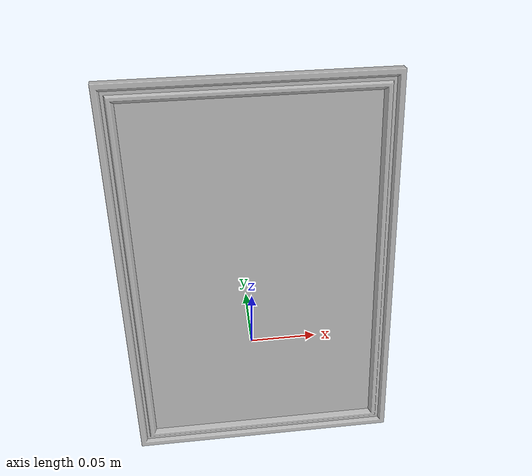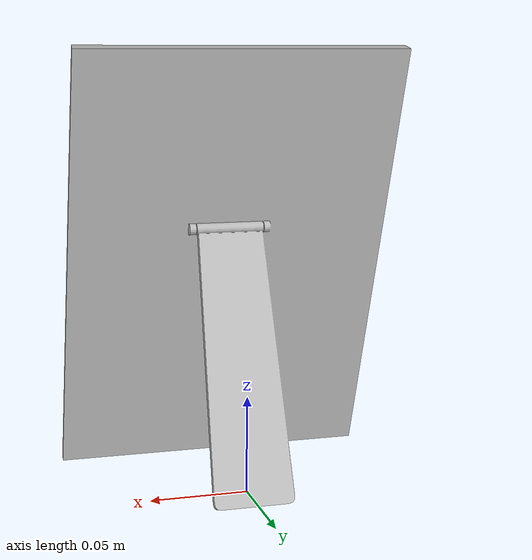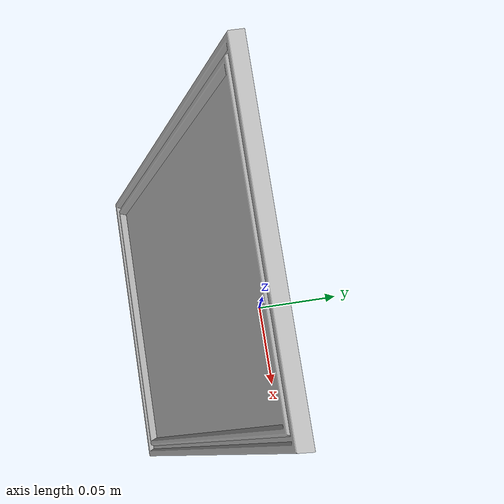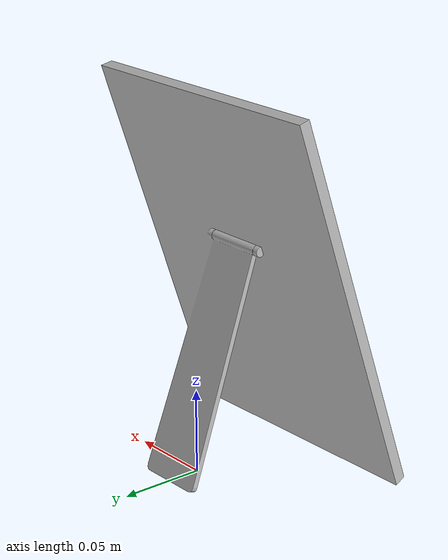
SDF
<?xml version="1.0" encoding="utf-8"?>
<sdf version="1.6">
  <model name="aws_robomaker_residential_DeskPortraitA_02">
    <link name="link">
      <inertial>
        <mass>1</mass>
        <inertia>
          <ixx>0.0835</ixx>
          <ixy>0</ixy>
          <ixz>0</ixz>
          <iyy>0.16</iyy>
          <iyz>0</iyz>
          <izz>0.08347</izz>
        </inertia>
      </inertial>
      <collision name="collision">
        <geometry>
          <mesh>
            <uri>model://aws_robomaker_residential_DeskPortraitA_02/meshes/aws_DeskPortraitA_01_collision.DAE</uri>
            <scale>1 1 1</scale>
          </mesh>
        </geometry>
      </collision>
      <visual name="visual">
        <geometry>
          <mesh>
            <uri>model://aws_robomaker_residential_DeskPortraitA_02/meshes/aws_DeskPortraitA_01_visual.DAE</uri>
          </mesh>
        </geometry>
        <meta>
          <layer> 1 </layer>
        </meta>
      </visual>
    </link>
  </model>
</sdf>
